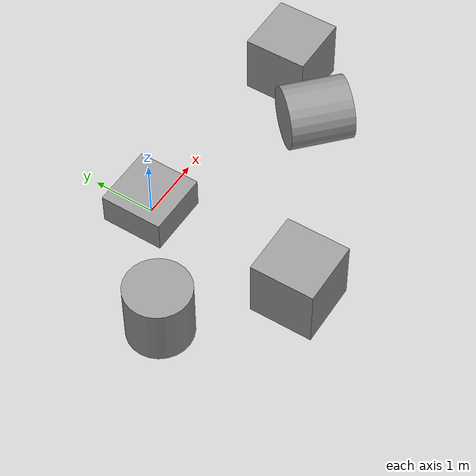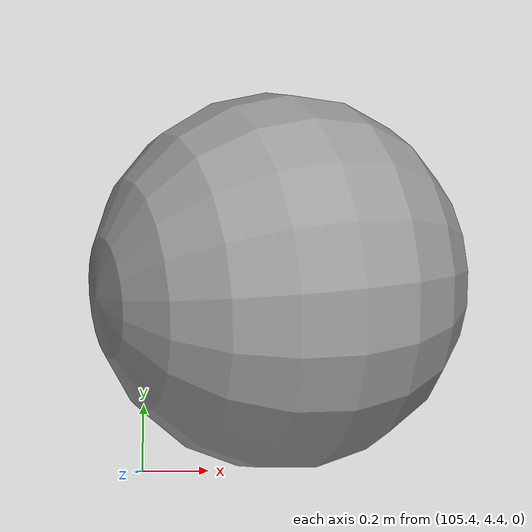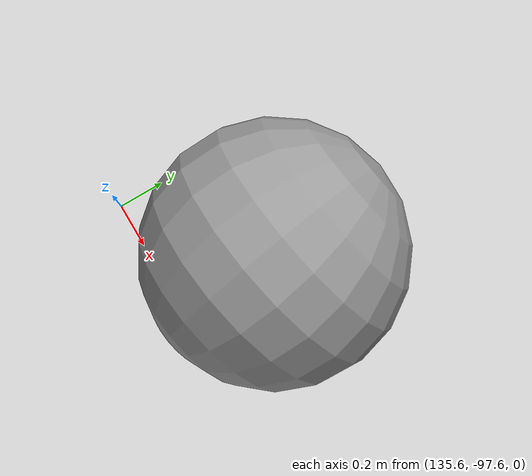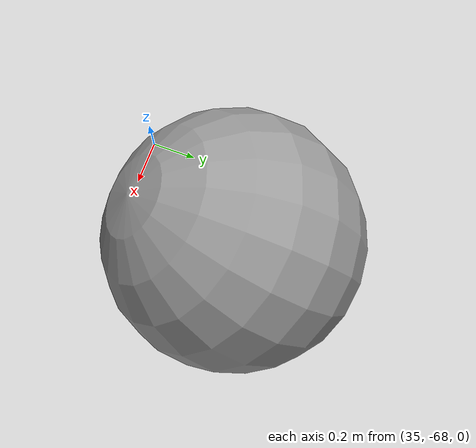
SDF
<sdf version="1.6">
 <world name="default">
  <light name="sun" type="directional">
   <pose>0 0 10 0 -0 0</pose>
   <diffuse>0.8 0.8 0.8 1</diffuse>
   <specular>0.2 0.2 0.2 1</specular>
   <attenuation>
    <range>1000</range>
    <constant>0.9</constant>
    <linear>0.01</linear>
    <quadratic>0.001</quadratic>
   </attenuation>
   <direction>-0.5 0.1 -0.9</direction>
  </light>
  <model name="ground_plane">
   <static>1</static>
   <link name="link">
    <collision name="collision">
     <geometry><plane><normal>0 0 1</normal><size>100 100</size></plane></geometry>
     <surface><friction><ode><mu>100</mu><mu2>50</mu2></ode></friction></surface>
    </collision>
    <visual name="visual">
     <cast_shadows>0</cast_shadows>
     <geometry><plane><normal>0 0 1</normal><size>100 100</size></plane></geometry>
     <material>
      <script><uri>file://media/materials/scripts/gazebo.material</uri><name>Gazebo/Grey</name></script>
     </material>
    </visual>
   </link>
  </model>
  <gravity>0 0 -9.8</gravity>
  <magnetic_field>6e-06 2.3e-05 -4.2e-05</magnetic_field>
  <atmosphere type="adiabatic"/>
  <physics name="default_physics" default="0" type="ode">
   <max_step_size>0.001</max_step_size>
   <real_time_factor>1</real_time_factor>
   <real_time_update_rate>1000</real_time_update_rate>
  </physics>
  <scene><ambient>0.4 0.4 0.4 1</ambient><background>0.7 0.7 0.7 1</background><shadows>1</shadows></scene>
  <spherical_coordinates>
   <surface_model>EARTH_WGS84</surface_model>
   <latitude_deg>0</latitude_deg>
   <longitude_deg>0</longitude_deg>
   <elevation>0</elevation>
   <heading_deg>0</heading_deg>
  </spherical_coordinates>
  <model name="unit_box">
   <link name="link">
    <inertial>
     <mass>1</mass>
     <inertia>
      <ixx>0.166667</ixx>
      <ixy>0</ixy>
      <ixz>0</ixz>
      <iyy>0.166667</iyy>
      <iyz>0</iyz>
      <izz>0.166667</izz>
     </inertia>
    </inertial>
    <collision name="collision"><geometry><box><size>1 1 1</size></box></geometry></collision>
    <visual name="visual">
     <geometry><box><size>1 1 1</size></box></geometry>
     <material>
      <script><name>Gazebo/Grey</name><uri>file://media/materials/scripts/gazebo.material</uri></script>
     </material>
    </visual>
   </link>
   <plugin name="animator" filename="libgazebo_tochanek_animator.so">
    <update_rate>100</update_rate>
    <cv>
     <point><x>0.0</x><y>5.0</y><z>0.5</z></point>
     <point><x>1.0</x><y>-1.0</y><z>0.5</z></point>
     <point><x>0.0</x><y>2.0</y><z>0.5</z></point>
    </cv>
    <total_time>10.0</total_time>
   </plugin>
  </model>
  <model name="unit_sphere">
   <pose>136.19 -97.1849 0.5 -0.867501 -1.06074 -0.51117</pose>
   <link name="link">
    <inertial>
     <mass>1</mass>
     <inertia><ixx>0.1</ixx><ixy>0</ixy><ixz>0</ixz><iyy>0.1</iyy><iyz>0</iyz><izz>0.1</izz></inertia>
    </inertial>
    <collision name="collision"><geometry><sphere><radius>0.5</radius></sphere></geometry></collision>
    <visual name="visual">
     <geometry><sphere><radius>0.5</radius></sphere></geometry>
     <material>
      <script><name>Gazebo/Grey</name><uri>file://media/materials/scripts/gazebo.material</uri></script>
     </material>
    </visual>
   </link>
  </model>
  <model name="unit_sphere_0">
   <pose>105.814 4.90827 0.5 1.9967 0.364803 1.8884</pose>
   <link name="link">
    <inertial>
     <mass>1</mass>
     <inertia><ixx>0.1</ixx><ixy>0</ixy><ixz>0</ixz><iyy>0.1</iyy><iyz>0</iyz><izz>0.1</izz></inertia>
    </inertial>
    <collision name="collision"><geometry><sphere><radius>0.5</radius></sphere></geometry></collision>
    <visual name="visual">
     <geometry><sphere><radius>0.5</radius></sphere></geometry>
     <material>
      <script><name>Gazebo/Grey</name><uri>file://media/materials/scripts/gazebo.material</uri></script>
     </material>
    </visual>
   </link>
  </model>
  <model name="unit_box_0">
   <pose>-0.18714 -2.6797 0.499995 -0 -1e-05 0.011005</pose>
   <link name="link">
    <inertial>
     <mass>1</mass>
     <inertia>
      <ixx>0.166667</ixx>
      <ixy>0</ixy>
      <ixz>0</ixz>
      <iyy>0.166667</iyy>
      <iyz>0</iyz>
      <izz>0.166667</izz>
     </inertia>
    </inertial>
    <collision name="collision"><geometry><box><size>1 1 1</size></box></geometry></collision>
    <visual name="visual">
     <geometry><box><size>1 1 1</size></box></geometry>
     <material>
      <script><name>Gazebo/Grey</name><uri>file://media/materials/scripts/gazebo.material</uri></script>
     </material>
    </visual>
   </link>
  </model>
  <model name="unit_sphere_1">
   <pose>35.4336 -67.4374 0.5 0.603253 0.582726 -0.516018</pose>
   <link name="link">
    <inertial>
     <mass>1</mass>
     <inertia><ixx>0.1</ixx><ixy>0</ixy><ixz>0</ixz><iyy>0.1</iyy><iyz>0</iyz><izz>0.1</izz></inertia>
    </inertial>
    <collision name="collision"><geometry><sphere><radius>0.5</radius></sphere></geometry></collision>
    <visual name="visual">
     <geometry><sphere><radius>0.5</radius></sphere></geometry>
     <material>
      <script><name>Gazebo/Grey</name><uri>file://media/materials/scripts/gazebo.material</uri></script>
     </material>
    </visual>
   </link>
  </model>
  <model name="unit_box_1">
   <pose>3.39334 -0.327484 0.499995 0 1e-05 0.009368</pose>
   <link name="link">
    <inertial>
     <mass>1</mass>
     <inertia>
      <ixx>0.166667</ixx>
      <ixy>0</ixy>
      <ixz>0</ixz>
      <iyy>0.166667</iyy>
      <iyz>0</iyz>
      <izz>0.166667</izz>
     </inertia>
    </inertial>
    <collision name="collision"><geometry><box><size>1 1 1</size></box></geometry></collision>
    <visual name="visual">
     <geometry><box><size>1 1 1</size></box></geometry>
     <material>
      <script><name>Gazebo/Grey</name><uri>file://media/materials/scripts/gazebo.material</uri></script>
     </material>
    </visual>
   </link>
  </model>
  <model name="unit_sphere_2">
   <pose>192.889 -363.401 0.5 1.06408 -0.64858 -1.44891</pose>
   <link name="link">
    <inertial>
     <mass>1</mass>
     <inertia><ixx>0.1</ixx><ixy>0</ixy><ixz>0</ixz><iyy>0.1</iyy><iyz>0</iyz><izz>0.1</izz></inertia>
    </inertial>
    <collision name="collision"><geometry><sphere><radius>0.5</radius></sphere></geometry></collision>
    <visual name="visual">
     <geometry><sphere><radius>0.5</radius></sphere></geometry>
     <material>
      <script><name>Gazebo/Grey</name><uri>file://media/materials/scripts/gazebo.material</uri></script>
     </material>
    </visual>
   </link>
  </model>
  <model name="unit_cylinder">
   <pose>2.60636 -1.24633 0.5 -1.5708 1.07178 -2.31621</pose>
   <link name="link">
    <inertial>
     <mass>1</mass>
     <inertia><ixx>0.145833</ixx><ixy>0</ixy><ixz>0</ixz><iyy>0.145833</iyy><iyz>0</iyz><izz>0.125</izz></inertia>
    </inertial>
    <collision name="collision">
     <geometry><cylinder><radius>0.5</radius><length>1</length></cylinder></geometry>
    </collision>
    <visual name="visual">
     <geometry><cylinder><radius>0.5</radius><length>1</length></cylinder></geometry>
     <material>
      <script><name>Gazebo/Grey</name><uri>file://media/materials/scripts/gazebo.material</uri></script>
     </material>
    </visual>
   </link>
  </model>
  <model name="unit_cylinder_0">
   <pose>-1.66516 -1.31343 0.499996 4e-06 3e-06 0.02227</pose>
   <link name="link">
    <inertial>
     <mass>1</mass>
     <inertia><ixx>0.145833</ixx><ixy>0</ixy><ixz>0</ixz><iyy>0.145833</iyy><iyz>0</iyz><izz>0.125</izz></inertia>
    </inertial>
    <collision name="collision">
     <geometry><cylinder><radius>0.5</radius><length>1</length></cylinder></geometry>
    </collision>
    <visual name="visual">
     <geometry><cylinder><radius>0.5</radius><length>1</length></cylinder></geometry>
     <material>
      <script><name>Gazebo/Grey</name><uri>file://media/materials/scripts/gazebo.material</uri></script>
     </material>
    </visual>
   </link>
  </model>
  <plugin name="collision" filename="libgazebo_dds_model_state.so"><update_rate>100</update_rate></plugin>
  <model name="unit_box_2">
   <pose>-0.715385 -9.4857 0.499995 1.57081 -0 -0.590848</pose>
   <link name="link">
    <inertial>
     <mass>1</mass>
     <inertia>
      <ixx>0.166667</ixx>
      <ixy>0</ixy>
      <ixz>0</ixz>
      <iyy>0.166667</iyy>
      <iyz>0</iyz>
      <izz>0.166667</izz>
     </inertia>
    </inertial>
    <collision name="collision"><geometry><box><size>1 1 1</size></box></geometry></collision>
    <visual name="visual">
     <geometry><box><size>1 1 1</size></box></geometry>
     <material>
      <script><name>Gazebo/Grey</name><uri>file://media/materials/scripts/gazebo.material</uri></script>
     </material>
    </visual>
   </link>
  </model>
 </world>
</sdf>
